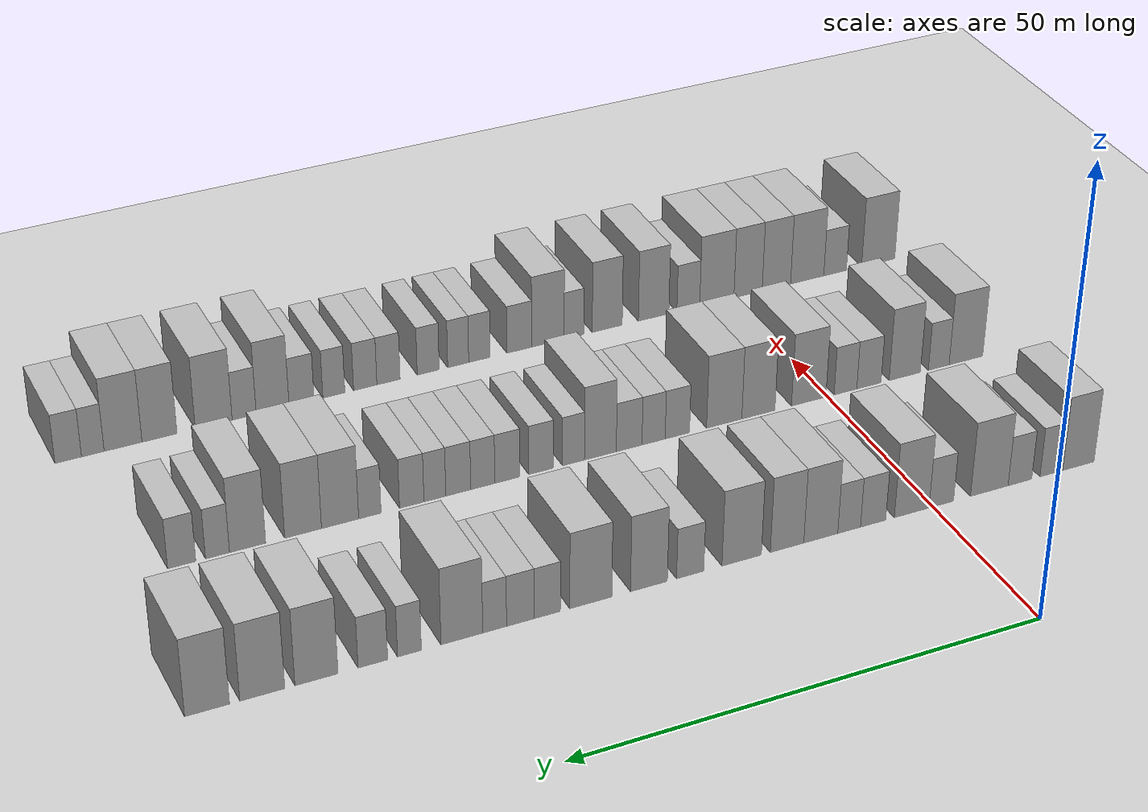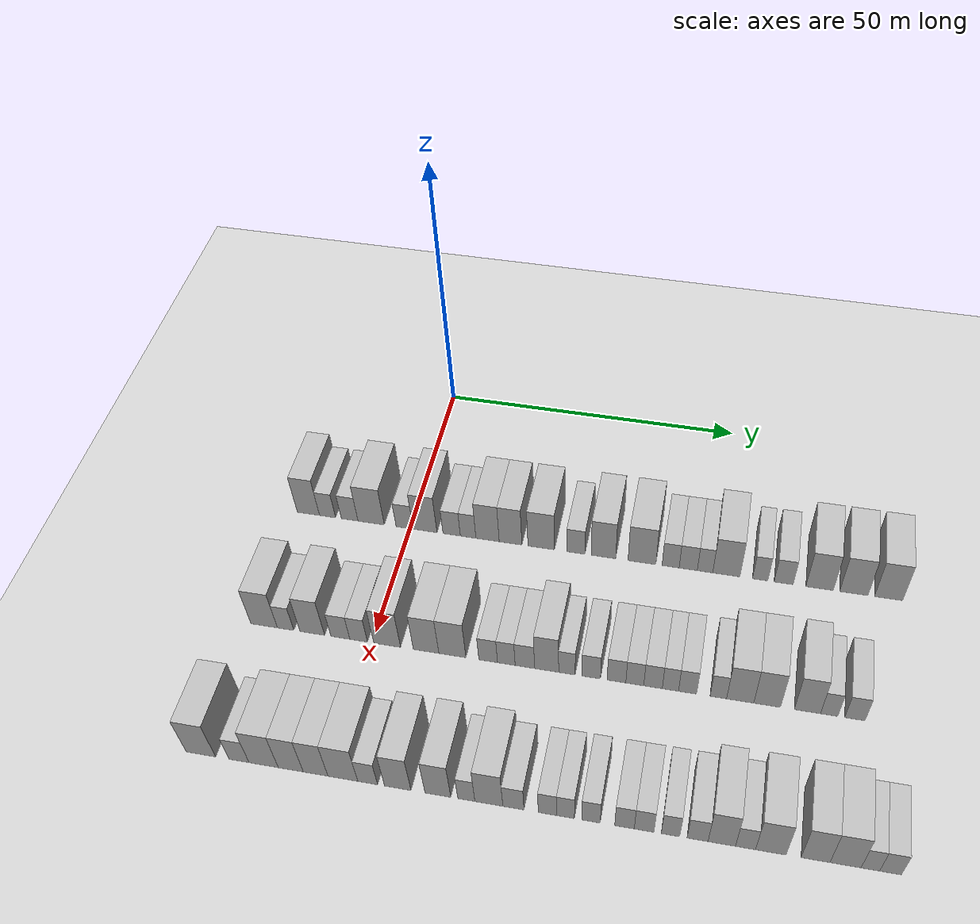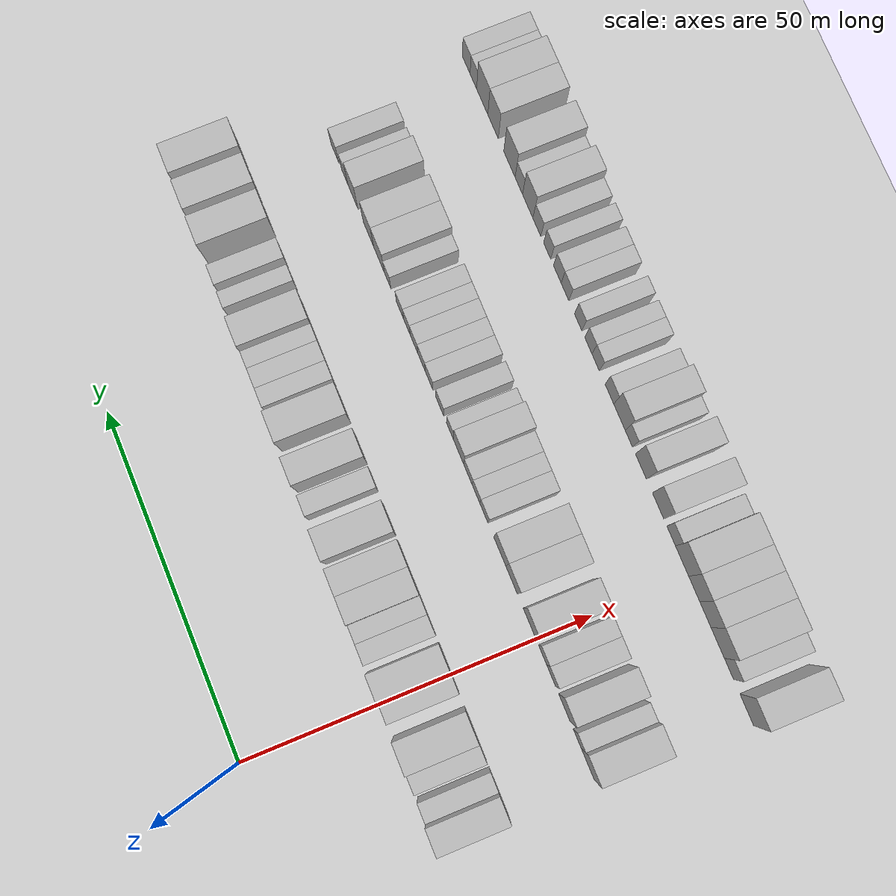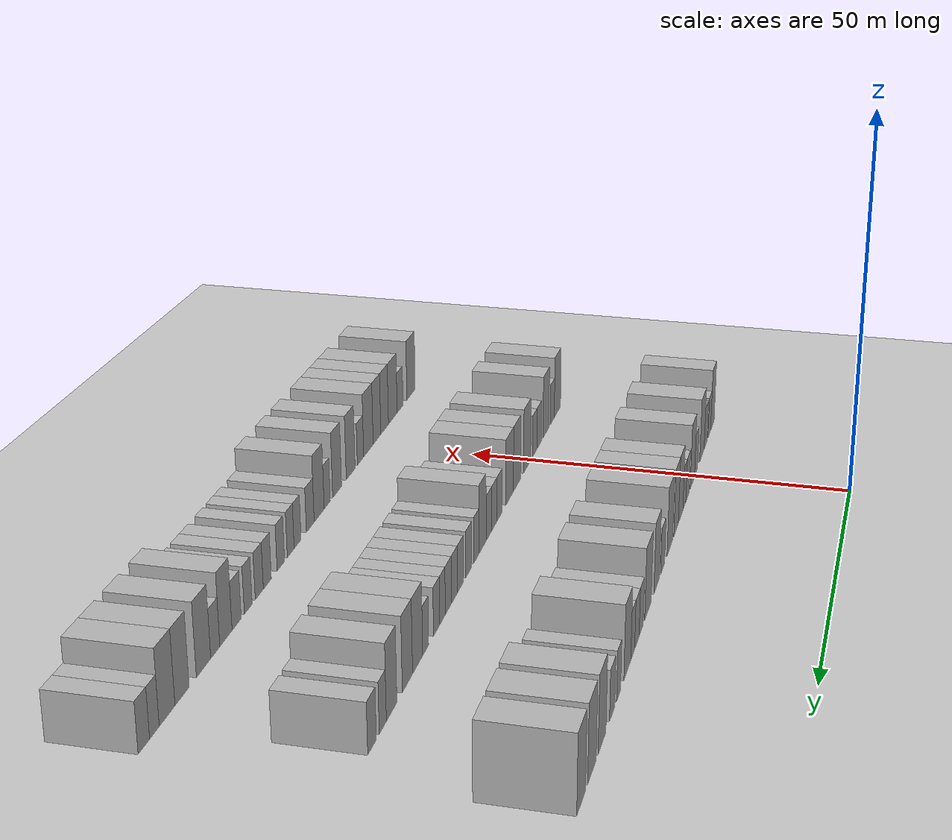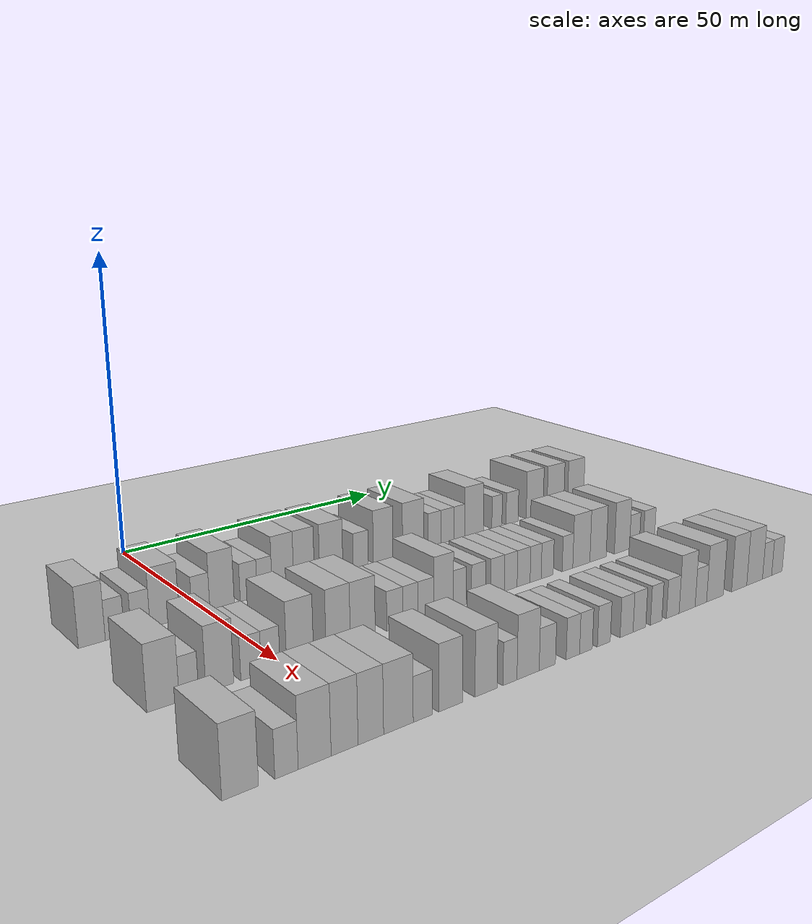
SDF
<sdf version="1.6">
 <world name="default">
  <include><name>ground_plane_1</name><uri>model://HANNAS_ground_plane</uri></include>
  <model name="building_84">
   <static>1</static>
   <pose>25.0000 -17.3759 0 0.000000 0.000000 0.000000</pose>
   <link name="link">
    <pose>0 0 4.50 0 0 0</pose>
    <collision name="collision"><geometry><box><size>10.0000 3.8138 9.0000</size></box></geometry></collision>
    <visual name="visual">
     <cast_shadows>0</cast_shadows>
     <geometry><box><size>10.0000 3.8138 9.0000</size></box></geometry>
     <material>
      <script>
       <uri>model://HANNAS_wall/materials/scripts</uri>
       <uri>model://HANNAS_wall/materials/textures</uri>
       <name>vrc/HANNAS_wall</name>
      </script>
     </material>
    </visual>
   </link>
  </model>
  <model name="building_85">
   <static>1</static>
   <pose>25.0000 -14.0923 0 0.000000 0.000000 0.000000</pose>
   <link name="link">
    <pose>0 0 3.00 0 0 0</pose>
    <collision name="collision"><geometry><box><size>10.0000 2.7533 6.0000</size></box></geometry></collision>
    <visual name="visual">
     <cast_shadows>0</cast_shadows>
     <geometry><box><size>10.0000 2.7533 6.0000</size></box></geometry>
     <material>
      <script>
       <uri>model://HANNAS_wall/materials/scripts</uri>
       <uri>model://HANNAS_wall/materials/textures</uri>
       <name>vrc/HANNAS_wall</name>
      </script>
     </material>
    </visual>
   </link>
  </model>
  <model name="building_86">
   <static>1</static>
   <pose>25.0000 -10.2972 0 0.000000 0.000000 0.000000</pose>
   <link name="link">
    <pose>0 0 3.00 0 0 0</pose>
    <collision name="collision"><geometry><box><size>10.0000 2.8370 6.0000</size></box></geometry></collision>
    <visual name="visual">
     <cast_shadows>0</cast_shadows>
     <geometry><box><size>10.0000 2.8370 6.0000</size></box></geometry>
     <material>
      <script>
       <uri>model://HANNAS_wall/materials/scripts</uri>
       <uri>model://HANNAS_wall/materials/textures</uri>
       <name>vrc/HANNAS_wall</name>
      </script>
     </material>
    </visual>
   </link>
  </model>
  <model name="building_87">
   <static>1</static>
   <pose>25.0000 -6.6408 0 0.000000 0.000000 0.000000</pose>
   <link name="link">
    <pose>0 0 4.50 0 0 0</pose>
    <collision name="collision"><geometry><box><size>10.0000 4.4758 9.0000</size></box></geometry></collision>
    <visual name="visual">
     <cast_shadows>0</cast_shadows>
     <geometry><box><size>10.0000 4.4758 9.0000</size></box></geometry>
     <material>
      <script>
       <uri>model://HANNAS_wall/materials/scripts</uri>
       <uri>model://HANNAS_wall/materials/textures</uri>
       <name>vrc/HANNAS_wall</name>
      </script>
     </material>
    </visual>
   </link>
  </model>
  <model name="building_88">
   <static>1</static>
   <pose>25.0000 -0.9645 0 0.000000 0.000000 0.000000</pose>
   <link name="link">
    <pose>0 0 3.00 0 0 0</pose>
    <collision name="collision"><geometry><box><size>10.0000 2.8769 6.0000</size></box></geometry></collision>
    <visual name="visual">
     <cast_shadows>0</cast_shadows>
     <geometry><box><size>10.0000 2.8769 6.0000</size></box></geometry>
     <material>
      <script>
       <uri>model://HANNAS_wall/materials/scripts</uri>
       <uri>model://HANNAS_wall/materials/textures</uri>
       <name>vrc/HANNAS_wall</name>
      </script>
     </material>
    </visual>
   </link>
  </model>
  <model name="building_89">
   <static>1</static>
   <pose>25.0000 2.4873 0 0.000000 0.000000 0.000000</pose>
   <link name="link">
    <pose>0 0 4.50 0 0 0</pose>
    <collision name="collision"><geometry><box><size>10.0000 4.0266 9.0000</size></box></geometry></collision>
    <visual name="visual">
     <cast_shadows>0</cast_shadows>
     <geometry><box><size>10.0000 4.0266 9.0000</size></box></geometry>
     <material>
      <script>
       <uri>model://HANNAS_wall/materials/scripts</uri>
       <uri>model://HANNAS_wall/materials/textures</uri>
       <name>vrc/HANNAS_wall</name>
      </script>
     </material>
    </visual>
   </link>
  </model>
  <model name="building_90">
   <static>1</static>
   <pose>25.0000 6.9519 0 0.000000 0.000000 0.000000</pose>
   <link name="link">
    <pose>0 0 3.00 0 0 0</pose>
    <collision name="collision"><geometry><box><size>10.0000 2.9027 6.0000</size></box></geometry></collision>
    <visual name="visual">
     <cast_shadows>0</cast_shadows>
     <geometry><box><size>10.0000 2.9027 6.0000</size></box></geometry>
     <material>
      <script>
       <uri>model://HANNAS_wall/materials/scripts</uri>
       <uri>model://HANNAS_wall/materials/textures</uri>
       <name>vrc/HANNAS_wall</name>
      </script>
     </material>
    </visual>
   </link>
  </model>
  <model name="building_91">
   <static>1</static>
   <pose>25.0000 9.7008 0 0.000000 0.000000 0.000000</pose>
   <link name="link">
    <pose>0 0 3.00 0 0 0</pose>
    <collision name="collision"><geometry><box><size>10.0000 2.5951 6.0000</size></box></geometry></collision>
    <visual name="visual">
     <cast_shadows>0</cast_shadows>
     <geometry><box><size>10.0000 2.5951 6.0000</size></box></geometry>
     <material>
      <script>
       <uri>model://HANNAS_wall/materials/scripts</uri>
       <uri>model://HANNAS_wall/materials/textures</uri>
       <name>vrc/HANNAS_wall</name>
      </script>
     </material>
    </visual>
   </link>
  </model>
  <model name="building_92">
   <static>1</static>
   <pose>25.0000 12.9299 0 0.000000 0.000000 0.000000</pose>
   <link name="link">
    <pose>0 0 4.50 0 0 0</pose>
    <collision name="collision"><geometry><box><size>10.0000 3.8630 9.0000</size></box></geometry></collision>
    <visual name="visual">
     <cast_shadows>0</cast_shadows>
     <geometry><box><size>10.0000 3.8630 9.0000</size></box></geometry>
     <material>
      <script>
       <uri>model://HANNAS_wall/materials/scripts</uri>
       <uri>model://HANNAS_wall/materials/textures</uri>
       <name>vrc/HANNAS_wall</name>
      </script>
     </material>
    </visual>
   </link>
  </model>
  <model name="building_93">
   <static>1</static>
   <pose>25.0000 16.7408 0 0.000000 0.000000 0.000000</pose>
   <link name="link">
    <pose>0 0 4.50 0 0 0</pose>
    <collision name="collision"><geometry><box><size>10.0000 3.7587 9.0000</size></box></geometry></collision>
    <visual name="visual">
     <cast_shadows>0</cast_shadows>
     <geometry><box><size>10.0000 3.7587 9.0000</size></box></geometry>
     <material>
      <script>
       <uri>model://HANNAS_wall/materials/scripts</uri>
       <uri>model://HANNAS_wall/materials/textures</uri>
       <name>vrc/HANNAS_wall</name>
      </script>
     </material>
    </visual>
   </link>
  </model>
  <model name="building_94">
   <static>1</static>
   <pose>25.0000 21.8074 0 0.000000 0.000000 0.000000</pose>
   <link name="link">
    <pose>0 0 4.50 0 0 0</pose>
    <collision name="collision"><geometry><box><size>10.0000 4.3744 9.0000</size></box></geometry></collision>
    <visual name="visual">
     <cast_shadows>0</cast_shadows>
     <geometry><box><size>10.0000 4.3744 9.0000</size></box></geometry>
     <material>
      <script>
       <uri>model://HANNAS_wall/materials/scripts</uri>
       <uri>model://HANNAS_wall/materials/textures</uri>
       <name>vrc/HANNAS_wall</name>
      </script>
     </material>
    </visual>
   </link>
  </model>
  <model name="building_95">
   <static>1</static>
   <pose>25.0000 27.4870 0 0.000000 0.000000 0.000000</pose>
   <link name="link">
    <pose>0 0 3.00 0 0 0</pose>
    <collision name="collision"><geometry><box><size>10.0000 2.9849 6.0000</size></box></geometry></collision>
    <visual name="visual">
     <cast_shadows>0</cast_shadows>
     <geometry><box><size>10.0000 2.9849 6.0000</size></box></geometry>
     <material>
      <script>
       <uri>model://HANNAS_wall/materials/scripts</uri>
       <uri>model://HANNAS_wall/materials/textures</uri>
       <name>vrc/HANNAS_wall</name>
      </script>
     </material>
    </visual>
   </link>
  </model>
  <model name="building_96">
   <static>1</static>
   <pose>25.0000 31.9734 0 0.000000 0.000000 0.000000</pose>
   <link name="link">
    <pose>0 0 4.50 0 0 0</pose>
    <collision name="collision"><geometry><box><size>10.0000 3.9878 9.0000</size></box></geometry></collision>
    <visual name="visual">
     <cast_shadows>0</cast_shadows>
     <geometry><box><size>10.0000 3.9878 9.0000</size></box></geometry>
     <material>
      <script>
       <uri>model://HANNAS_wall/materials/scripts</uri>
       <uri>model://HANNAS_wall/materials/textures</uri>
       <name>vrc/HANNAS_wall</name>
      </script>
     </material>
    </visual>
   </link>
  </model>
  <model name="building_97">
   <static>1</static>
   <pose>25.0000 38.2076 0 0.000000 0.000000 0.000000</pose>
   <link name="link">
    <pose>0 0 4.50 0 0 0</pose>
    <collision name="collision"><geometry><box><size>10.0000 4.4806 9.0000</size></box></geometry></collision>
    <visual name="visual">
     <cast_shadows>0</cast_shadows>
     <geometry><box><size>10.0000 4.4806 9.0000</size></box></geometry>
     <material>
      <script>
       <uri>model://HANNAS_wall/materials/scripts</uri>
       <uri>model://HANNAS_wall/materials/textures</uri>
       <name>vrc/HANNAS_wall</name>
      </script>
     </material>
    </visual>
   </link>
  </model>
  <model name="building_98">
   <static>1</static>
   <pose>25.0000 42.8174 0 0.000000 0.000000 0.000000</pose>
   <link name="link">
    <pose>0 0 3.00 0 0 0</pose>
    <collision name="collision"><geometry><box><size>10.0000 2.7390 6.0000</size></box></geometry></collision>
    <visual name="visual">
     <cast_shadows>0</cast_shadows>
     <geometry><box><size>10.0000 2.7390 6.0000</size></box></geometry>
     <material>
      <script>
       <uri>model://HANNAS_wall/materials/scripts</uri>
       <uri>model://HANNAS_wall/materials/textures</uri>
       <name>vrc/HANNAS_wall</name>
      </script>
     </material>
    </visual>
   </link>
  </model>
  <model name="building_99">
   <static>1</static>
   <pose>25.0000 45.6335 0 0.000000 0.000000 0.000000</pose>
   <link name="link">
    <pose>0 0 3.00 0 0 0</pose>
    <collision name="collision"><geometry><box><size>10.0000 2.8933 6.0000</size></box></geometry></collision>
    <visual name="visual">
     <cast_shadows>0</cast_shadows>
     <geometry><box><size>10.0000 2.8933 6.0000</size></box></geometry>
     <material>
      <script>
       <uri>model://HANNAS_wall/materials/scripts</uri>
       <uri>model://HANNAS_wall/materials/textures</uri>
       <name>vrc/HANNAS_wall</name>
      </script>
     </material>
    </visual>
   </link>
  </model>
  <model name="building_100">
   <static>1</static>
   <pose>25.0000 48.3159 0 0.000000 0.000000 0.000000</pose>
   <link name="link">
    <pose>0 0 3.00 0 0 0</pose>
    <collision name="collision"><geometry><box><size>10.0000 2.4715 6.0000</size></box></geometry></collision>
    <visual name="visual">
     <cast_shadows>0</cast_shadows>
     <geometry><box><size>10.0000 2.4715 6.0000</size></box></geometry>
     <material>
      <script>
       <uri>model://HANNAS_wall/materials/scripts</uri>
       <uri>model://HANNAS_wall/materials/textures</uri>
       <name>vrc/HANNAS_wall</name>
      </script>
     </material>
    </visual>
   </link>
  </model>
  <model name="building_101">
   <static>1</static>
   <pose>25.0000 51.7010 0 0.000000 0.000000 0.000000</pose>
   <link name="link">
    <pose>0 0 4.50 0 0 0</pose>
    <collision name="collision"><geometry><box><size>10.0000 4.2987 9.0000</size></box></geometry></collision>
    <visual name="visual">
     <cast_shadows>0</cast_shadows>
     <geometry><box><size>10.0000 4.2987 9.0000</size></box></geometry>
     <material>
      <script>
       <uri>model://HANNAS_wall/materials/scripts</uri>
       <uri>model://HANNAS_wall/materials/textures</uri>
       <name>vrc/HANNAS_wall</name>
      </script>
     </material>
    </visual>
   </link>
  </model>
  <model name="building_102">
   <static>1</static>
   <pose>25.0000 57.0596 0 0.000000 0.000000 0.000000</pose>
   <link name="link">
    <pose>0 0 3.00 0 0 0</pose>
    <collision name="collision"><geometry><box><size>10.0000 2.4184 6.0000</size></box></geometry></collision>
    <visual name="visual">
     <cast_shadows>0</cast_shadows>
     <geometry><box><size>10.0000 2.4184 6.0000</size></box></geometry>
     <material>
      <script>
       <uri>model://HANNAS_wall/materials/scripts</uri>
       <uri>model://HANNAS_wall/materials/textures</uri>
       <name>vrc/HANNAS_wall</name>
      </script>
     </material>
    </visual>
   </link>
  </model>
  <model name="building_103">
   <static>1</static>
   <pose>25.0000 60.7568 0 0.000000 0.000000 0.000000</pose>
   <link name="link">
    <pose>0 0 3.00 0 0 0</pose>
    <collision name="collision"><geometry><box><size>10.0000 2.9759 6.0000</size></box></geometry></collision>
    <visual name="visual">
     <cast_shadows>0</cast_shadows>
     <geometry><box><size>10.0000 2.9759 6.0000</size></box></geometry>
     <material>
      <script>
       <uri>model://HANNAS_wall/materials/scripts</uri>
       <uri>model://HANNAS_wall/materials/textures</uri>
       <name>vrc/HANNAS_wall</name>
      </script>
     </material>
    </visual>
   </link>
  </model>
  <model name="building_104">
   <static>1</static>
   <pose>25.0000 66.3782 0 0.000000 0.000000 0.000000</pose>
   <link name="link">
    <pose>0 0 4.50 0 0 0</pose>
    <collision name="collision"><geometry><box><size>10.0000 4.2670 9.0000</size></box></geometry></collision>
    <visual name="visual">
     <cast_shadows>0</cast_shadows>
     <geometry><box><size>10.0000 4.2670 9.0000</size></box></geometry>
     <material>
      <script>
       <uri>model://HANNAS_wall/materials/scripts</uri>
       <uri>model://HANNAS_wall/materials/textures</uri>
       <name>vrc/HANNAS_wall</name>
      </script>
     </material>
    </visual>
   </link>
  </model>
  <model name="building_105">
   <static>1</static>
   <pose>25.0000 71.7042 0 0.000000 0.000000 0.000000</pose>
   <link name="link">
    <pose>0 0 4.50 0 0 0</pose>
    <collision name="collision"><geometry><box><size>10.0000 4.3850 9.0000</size></box></geometry></collision>
    <visual name="visual">
     <cast_shadows>0</cast_shadows>
     <geometry><box><size>10.0000 4.3850 9.0000</size></box></geometry>
     <material>
      <script>
       <uri>model://HANNAS_wall/materials/scripts</uri>
       <uri>model://HANNAS_wall/materials/textures</uri>
       <name>vrc/HANNAS_wall</name>
      </script>
     </material>
    </visual>
   </link>
  </model>
  <model name="building_106">
   <static>1</static>
   <pose>25.0000 77.0617 0 0.000000 0.000000 0.000000</pose>
   <link name="link">
    <pose>0 0 4.50 0 0 0</pose>
    <collision name="collision"><geometry><box><size>10.0000 4.3301 9.0000</size></box></geometry></collision>
    <visual name="visual">
     <cast_shadows>0</cast_shadows>
     <geometry><box><size>10.0000 4.3301 9.0000</size></box></geometry>
     <material>
      <script>
       <uri>model://HANNAS_wall/materials/scripts</uri>
       <uri>model://HANNAS_wall/materials/textures</uri>
       <name>vrc/HANNAS_wall</name>
      </script>
     </material>
    </visual>
   </link>
  </model>
  <model name="building_276">
   <static>1</static>
   <pose>47.0000 -17.2260 0 0.000000 0.000000 0.000000</pose>
   <link name="link">
    <pose>0 0 4.50 0 0 0</pose>
    <collision name="collision"><geometry><box><size>10.0000 4.2676 9.0000</size></box></geometry></collision>
    <visual name="visual">
     <cast_shadows>0</cast_shadows>
     <geometry><box><size>10.0000 4.2676 9.0000</size></box></geometry>
     <material>
      <script>
       <uri>model://HANNAS_wall/materials/scripts</uri>
       <uri>model://HANNAS_wall/materials/textures</uri>
       <name>vrc/HANNAS_wall</name>
      </script>
     </material>
    </visual>
   </link>
  </model>
  <model name="building_277">
   <static>1</static>
   <pose>47.0000 -13.7852 0 0.000000 0.000000 0.000000</pose>
   <link name="link">
    <pose>0 0 3.00 0 0 0</pose>
    <collision name="collision"><geometry><box><size>10.0000 2.6142 6.0000</size></box></geometry></collision>
    <visual name="visual">
     <cast_shadows>0</cast_shadows>
     <geometry><box><size>10.0000 2.6142 6.0000</size></box></geometry>
     <material>
      <script>
       <uri>model://HANNAS_wall/materials/scripts</uri>
       <uri>model://HANNAS_wall/materials/textures</uri>
       <name>vrc/HANNAS_wall</name>
      </script>
     </material>
    </visual>
   </link>
  </model>
  <model name="building_278">
   <static>1</static>
   <pose>47.0000 -9.5276 0 0.000000 0.000000 0.000000</pose>
   <link name="link">
    <pose>0 0 4.50 0 0 0</pose>
    <collision name="collision"><geometry><box><size>10.0000 3.9010 9.0000</size></box></geometry></collision>
    <visual name="visual">
     <cast_shadows>0</cast_shadows>
     <geometry><box><size>10.0000 3.9010 9.0000</size></box></geometry>
     <material>
      <script>
       <uri>model://HANNAS_wall/materials/scripts</uri>
       <uri>model://HANNAS_wall/materials/textures</uri>
       <name>vrc/HANNAS_wall</name>
      </script>
     </material>
    </visual>
   </link>
  </model>
  <model name="building_279">
   <static>1</static>
   <pose>47.0000 -5.0783 0 0.000000 0.000000 0.000000</pose>
   <link name="link">
    <pose>0 0 3.00 0 0 0</pose>
    <collision name="collision"><geometry><box><size>10.0000 2.9975 6.0000</size></box></geometry></collision>
    <visual name="visual">
     <cast_shadows>0</cast_shadows>
     <geometry><box><size>10.0000 2.9975 6.0000</size></box></geometry>
     <material>
      <script>
       <uri>model://HANNAS_wall/materials/scripts</uri>
       <uri>model://HANNAS_wall/materials/textures</uri>
       <name>vrc/HANNAS_wall</name>
      </script>
     </material>
    </visual>
   </link>
  </model>
  <model name="building_280">
   <static>1</static>
   <pose>47.0000 -2.1863 0 0.000000 0.000000 0.000000</pose>
   <link name="link">
    <pose>0 0 3.00 0 0 0</pose>
    <collision name="collision"><geometry><box><size>10.0000 2.7865 6.0000</size></box></geometry></collision>
    <visual name="visual">
     <cast_shadows>0</cast_shadows>
     <geometry><box><size>10.0000 2.7865 6.0000</size></box></geometry>
     <material>
      <script>
       <uri>model://HANNAS_wall/materials/scripts</uri>
       <uri>model://HANNAS_wall/materials/textures</uri>
       <name>vrc/HANNAS_wall</name>
      </script>
     </material>
    </visual>
   </link>
  </model>
  <model name="building_281">
   <static>1</static>
   <pose>47.0000 2.2988 0 0.000000 0.000000 0.000000</pose>
   <link name="link">
    <pose>0 0 4.50 0 0 0</pose>
    <collision name="collision"><geometry><box><size>10.0000 4.1838 9.0000</size></box></geometry></collision>
    <visual name="visual">
     <cast_shadows>0</cast_shadows>
     <geometry><box><size>10.0000 4.1838 9.0000</size></box></geometry>
     <material>
      <script>
       <uri>model://HANNAS_wall/materials/scripts</uri>
       <uri>model://HANNAS_wall/materials/textures</uri>
       <name>vrc/HANNAS_wall</name>
      </script>
     </material>
    </visual>
   </link>
  </model>
  <model name="building_282">
   <static>1</static>
   <pose>47.0000 8.3733 0 0.000000 0.000000 0.000000</pose>
   <link name="link">
    <pose>0 0 4.50 0 0 0</pose>
    <collision name="collision"><geometry><box><size>10.0000 3.9652 9.0000</size></box></geometry></collision>
    <visual name="visual">
     <cast_shadows>0</cast_shadows>
     <geometry><box><size>10.0000 3.9652 9.0000</size></box></geometry>
     <material>
      <script>
       <uri>model://HANNAS_wall/materials/scripts</uri>
       <uri>model://HANNAS_wall/materials/textures</uri>
       <name>vrc/HANNAS_wall</name>
      </script>
     </material>
    </visual>
   </link>
  </model>
  <model name="building_283">
   <static>1</static>
   <pose>47.0000 12.4504 0 0.000000 0.000000 0.000000</pose>
   <link name="link">
    <pose>0 0 4.50 0 0 0</pose>
    <collision name="collision"><geometry><box><size>10.0000 4.1890 9.0000</size></box></geometry></collision>
    <visual name="visual">
     <cast_shadows>0</cast_shadows>
     <geometry><box><size>10.0000 4.1890 9.0000</size></box></geometry>
     <material>
      <script>
       <uri>model://HANNAS_wall/materials/scripts</uri>
       <uri>model://HANNAS_wall/materials/textures</uri>
       <name>vrc/HANNAS_wall</name>
      </script>
     </material>
    </visual>
   </link>
  </model>
  <model name="building_284">
   <static>1</static>
   <pose>47.0000 17.9742 0 0.000000 0.000000 0.000000</pose>
   <link name="link">
    <pose>0 0 3.00 0 0 0</pose>
    <collision name="collision"><geometry><box><size>10.0000 2.8586 6.0000</size></box></geometry></collision>
    <visual name="visual">
     <cast_shadows>0</cast_shadows>
     <geometry><box><size>10.0000 2.8586 6.0000</size></box></geometry>
     <material>
      <script>
       <uri>model://HANNAS_wall/materials/scripts</uri>
       <uri>model://HANNAS_wall/materials/textures</uri>
       <name>vrc/HANNAS_wall</name>
      </script>
     </material>
    </visual>
   </link>
  </model>
  <model name="building_285">
   <static>1</static>
   <pose>47.0000 20.7524 0 0.000000 0.000000 0.000000</pose>
   <link name="link">
    <pose>0 0 3.00 0 0 0</pose>
    <collision name="collision"><geometry><box><size>10.0000 2.6980 6.0000</size></box></geometry></collision>
    <visual name="visual">
     <cast_shadows>0</cast_shadows>
     <geometry><box><size>10.0000 2.6980 6.0000</size></box></geometry>
     <material>
      <script>
       <uri>model://HANNAS_wall/materials/scripts</uri>
       <uri>model://HANNAS_wall/materials/textures</uri>
       <name>vrc/HANNAS_wall</name>
      </script>
     </material>
    </visual>
   </link>
  </model>
  <model name="building_286">
   <static>1</static>
   <pose>47.0000 23.5860 0 0.000000 0.000000 0.000000</pose>
   <link name="link">
    <pose>0 0 3.00 0 0 0</pose>
    <collision name="collision"><geometry><box><size>10.0000 2.9692 6.0000</size></box></geometry></collision>
    <visual name="visual">
     <cast_shadows>0</cast_shadows>
     <geometry><box><size>10.0000 2.9692 6.0000</size></box></geometry>
     <material>
      <script>
       <uri>model://HANNAS_wall/materials/scripts</uri>
       <uri>model://HANNAS_wall/materials/textures</uri>
       <name>vrc/HANNAS_wall</name>
      </script>
     </material>
    </visual>
   </link>
  </model>
  <model name="building_287">
   <static>1</static>
   <pose>47.0000 26.8991 0 0.000000 0.000000 0.000000</pose>
   <link name="link">
    <pose>0 0 4.50 0 0 0</pose>
    <collision name="collision"><geometry><box><size>10.0000 3.6569 9.0000</size></box></geometry></collision>
    <visual name="visual">
     <cast_shadows>0</cast_shadows>
     <geometry><box><size>10.0000 3.6569 9.0000</size></box></geometry>
     <material>
      <script>
       <uri>model://HANNAS_wall/materials/scripts</uri>
       <uri>model://HANNAS_wall/materials/textures</uri>
       <name>vrc/HANNAS_wall</name>
      </script>
     </material>
    </visual>
   </link>
  </model>
  <model name="building_288">
   <static>1</static>
   <pose>47.0000 29.9721 0 0.000000 0.000000 0.000000</pose>
   <link name="link">
    <pose>0 0 3.00 0 0 0</pose>
    <collision name="collision"><geometry><box><size>10.0000 2.4892 6.0000</size></box></geometry></collision>
    <visual name="visual">
     <cast_shadows>0</cast_shadows>
     <geometry><box><size>10.0000 2.4892 6.0000</size></box></geometry>
     <material>
      <script>
       <uri>model://HANNAS_wall/materials/scripts</uri>
       <uri>model://HANNAS_wall/materials/textures</uri>
       <name>vrc/HANNAS_wall</name>
      </script>
     </material>
    </visual>
   </link>
  </model>
  <model name="building_289">
   <static>1</static>
   <pose>47.0000 33.6264 0 0.000000 0.000000 0.000000</pose>
   <link name="link">
    <pose>0 0 3.00 0 0 0</pose>
    <collision name="collision"><geometry><box><size>10.0000 2.8194 6.0000</size></box></geometry></collision>
    <visual name="visual">
     <cast_shadows>0</cast_shadows>
     <geometry><box><size>10.0000 2.8194 6.0000</size></box></geometry>
     <material>
      <script>
       <uri>model://HANNAS_wall/materials/scripts</uri>
       <uri>model://HANNAS_wall/materials/textures</uri>
       <name>vrc/HANNAS_wall</name>
      </script>
     </material>
    </visual>
   </link>
  </model>
  <model name="building_290">
   <static>1</static>
   <pose>47.0000 37.4387 0 0.000000 0.000000 0.000000</pose>
   <link name="link">
    <pose>0 0 3.00 0 0 0</pose>
    <collision name="collision"><geometry><box><size>10.0000 2.8050 6.0000</size></box></geometry></collision>
    <visual name="visual">
     <cast_shadows>0</cast_shadows>
     <geometry><box><size>10.0000 2.8050 6.0000</size></box></geometry>
     <material>
      <script>
       <uri>model://HANNAS_wall/materials/scripts</uri>
       <uri>model://HANNAS_wall/materials/textures</uri>
       <name>vrc/HANNAS_wall</name>
      </script>
     </material>
    </visual>
   </link>
  </model>
  <model name="building_291">
   <static>1</static>
   <pose>47.0000 40.1781 0 0.000000 0.000000 0.000000</pose>
   <link name="link">
    <pose>0 0 3.00 0 0 0</pose>
    <collision name="collision"><geometry><box><size>10.0000 2.6738 6.0000</size></box></geometry></collision>
    <visual name="visual">
     <cast_shadows>0</cast_shadows>
     <geometry><box><size>10.0000 2.6738 6.0000</size></box></geometry>
     <material>
      <script>
       <uri>model://HANNAS_wall/materials/scripts</uri>
       <uri>model://HANNAS_wall/materials/textures</uri>
       <name>vrc/HANNAS_wall</name>
      </script>
     </material>
    </visual>
   </link>
  </model>
  <model name="building_292">
   <static>1</static>
   <pose>47.0000 42.8926 0 0.000000 0.000000 0.000000</pose>
   <link name="link">
    <pose>0 0 3.00 0 0 0</pose>
    <collision name="collision"><geometry><box><size>10.0000 2.7552 6.0000</size></box></geometry></collision>
    <visual name="visual">
     <cast_shadows>0</cast_shadows>
     <geometry><box><size>10.0000 2.7552 6.0000</size></box></geometry>
     <material>
      <script>
       <uri>model://HANNAS_wall/materials/scripts</uri>
       <uri>model://HANNAS_wall/materials/textures</uri>
       <name>vrc/HANNAS_wall</name>
      </script>
     </material>
    </visual>
   </link>
  </model>
  <model name="building_293">
   <static>1</static>
   <pose>47.0000 45.4708 0 0.000000 0.000000 0.000000</pose>
   <link name="link">
    <pose>0 0 3.00 0 0 0</pose>
    <collision name="collision"><geometry><box><size>10.0000 2.4011 6.0000</size></box></geometry></collision>
    <visual name="visual">
     <cast_shadows>0</cast_shadows>
     <geometry><box><size>10.0000 2.4011 6.0000</size></box></geometry>
     <material>
      <script>
       <uri>model://HANNAS_wall/materials/scripts</uri>
       <uri>model://HANNAS_wall/materials/textures</uri>
       <name>vrc/HANNAS_wall</name>
      </script>
     </material>
    </visual>
   </link>
  </model>
  <model name="building_294">
   <static>1</static>
   <pose>47.0000 48.0061 0 0.000000 0.000000 0.000000</pose>
   <link name="link">
    <pose>0 0 3.00 0 0 0</pose>
    <collision name="collision"><geometry><box><size>10.0000 2.6696 6.0000</size></box></geometry></collision>
    <visual name="visual">
     <cast_shadows>0</cast_shadows>
     <geometry><box><size>10.0000 2.6696 6.0000</size></box></geometry>
     <material>
      <script>
       <uri>model://HANNAS_wall/materials/scripts</uri>
       <uri>model://HANNAS_wall/materials/textures</uri>
       <name>vrc/HANNAS_wall</name>
      </script>
     </material>
    </visual>
   </link>
  </model>
  <model name="building_295">
   <static>1</static>
   <pose>47.0000 52.5506 0 0.000000 0.000000 0.000000</pose>
   <link name="link">
    <pose>0 0 3.00 0 0 0</pose>
    <collision name="collision"><geometry><box><size>10.0000 2.4193 6.0000</size></box></geometry></collision>
    <visual name="visual">
     <cast_shadows>0</cast_shadows>
     <geometry><box><size>10.0000 2.4193 6.0000</size></box></geometry>
     <material>
      <script>
       <uri>model://HANNAS_wall/materials/scripts</uri>
       <uri>model://HANNAS_wall/materials/textures</uri>
       <name>vrc/HANNAS_wall</name>
      </script>
     </material>
    </visual>
   </link>
  </model>
  <model name="building_296">
   <static>1</static>
   <pose>47.0000 55.7497 0 0.000000 0.000000 0.000000</pose>
   <link name="link">
    <pose>0 0 4.50 0 0 0</pose>
    <collision name="collision"><geometry><box><size>10.0000 3.9790 9.0000</size></box></geometry></collision>
    <visual name="visual">
     <cast_shadows>0</cast_shadows>
     <geometry><box><size>10.0000 3.9790 9.0000</size></box></geometry>
     <material>
      <script>
       <uri>model://HANNAS_wall/materials/scripts</uri>
       <uri>model://HANNAS_wall/materials/textures</uri>
       <name>vrc/HANNAS_wall</name>
      </script>
     </material>
    </visual>
   </link>
  </model>
  <model name="building_297">
   <static>1</static>
   <pose>47.0000 59.6913 0 0.000000 0.000000 0.000000</pose>
   <link name="link">
    <pose>0 0 4.50 0 0 0</pose>
    <collision name="collision"><geometry><box><size>10.0000 3.9042 9.0000</size></box></geometry></collision>
    <visual name="visual">
     <cast_shadows>0</cast_shadows>
     <geometry><box><size>10.0000 3.9042 9.0000</size></box></geometry>
     <material>
      <script>
       <uri>model://HANNAS_wall/materials/scripts</uri>
       <uri>model://HANNAS_wall/materials/textures</uri>
       <name>vrc/HANNAS_wall</name>
      </script>
     </material>
    </visual>
   </link>
  </model>
  <model name="building_298">
   <static>1</static>
   <pose>47.0000 65.5349 0 0.000000 0.000000 0.000000</pose>
   <link name="link">
    <pose>0 0 4.50 0 0 0</pose>
    <collision name="collision"><geometry><box><size>10.0000 3.7829 9.0000</size></box></geometry></collision>
    <visual name="visual">
     <cast_shadows>0</cast_shadows>
     <geometry><box><size>10.0000 3.7829 9.0000</size></box></geometry>
     <material>
      <script>
       <uri>model://HANNAS_wall/materials/scripts</uri>
       <uri>model://HANNAS_wall/materials/textures</uri>
       <name>vrc/HANNAS_wall</name>
      </script>
     </material>
    </visual>
   </link>
  </model>
  <model name="building_299">
   <static>1</static>
   <pose>47.0000 68.6725 0 0.000000 0.000000 0.000000</pose>
   <link name="link">
    <pose>0 0 3.00 0 0 0</pose>
    <collision name="collision"><geometry><box><size>10.0000 2.4925 6.0000</size></box></geometry></collision>
    <visual name="visual">
     <cast_shadows>0</cast_shadows>
     <geometry><box><size>10.0000 2.4925 6.0000</size></box></geometry>
     <material>
      <script>
       <uri>model://HANNAS_wall/materials/scripts</uri>
       <uri>model://HANNAS_wall/materials/textures</uri>
       <name>vrc/HANNAS_wall</name>
      </script>
     </material>
    </visual>
   </link>
  </model>
  <model name="building_300">
   <static>1</static>
   <pose>47.0000 72.3724 0 0.000000 0.000000 0.000000</pose>
   <link name="link">
    <pose>0 0 3.00 0 0 0</pose>
    <collision name="collision"><geometry><box><size>10.0000 2.9072 6.0000</size></box></geometry></collision>
    <visual name="visual">
     <cast_shadows>0</cast_shadows>
     <geometry><box><size>10.0000 2.9072 6.0000</size></box></geometry>
     <material>
      <script>
       <uri>model://HANNAS_wall/materials/scripts</uri>
       <uri>model://HANNAS_wall/materials/textures</uri>
       <name>vrc/HANNAS_wall</name>
      </script>
     </material>
    </visual>
   </link>
  </model>
  <model name="building_464">
   <static>1</static>
   <pose>69.0000 -18.8161 0 0.000000 0.000000 0.000000</pose>
   <link name="link">
    <pose>0 0 4.50 0 0 0</pose>
    <collision name="collision"><geometry><box><size>10.0000 4.3909 9.0000</size></box></geometry></collision>
    <visual name="visual">
     <cast_shadows>0</cast_shadows>
     <geometry><box><size>10.0000 4.3909 9.0000</size></box></geometry>
     <material>
      <script>
       <uri>model://HANNAS_wall/materials/scripts</uri>
       <uri>model://HANNAS_wall/materials/textures</uri>
       <name>vrc/HANNAS_wall</name>
      </script>
     </material>
    </visual>
   </link>
  </model>
  <model name="building_465">
   <static>1</static>
   <pose>69.0000 -13.1410 0 0.000000 0.000000 0.000000</pose>
   <link name="link">
    <pose>0 0 3.00 0 0 0</pose>
    <collision name="collision"><geometry><box><size>10.0000 2.9592 6.0000</size></box></geometry></collision>
    <visual name="visual">
     <cast_shadows>0</cast_shadows>
     <geometry><box><size>10.0000 2.9592 6.0000</size></box></geometry>
     <material>
      <script>
       <uri>model://HANNAS_wall/materials/scripts</uri>
       <uri>model://HANNAS_wall/materials/textures</uri>
       <name>vrc/HANNAS_wall</name>
      </script>
     </material>
    </visual>
   </link>
  </model>
  <model name="building_466">
   <static>1</static>
   <pose>69.0000 -9.5042 0 0.000000 0.000000 0.000000</pose>
   <link name="link">
    <pose>0 0 4.50 0 0 0</pose>
    <collision name="collision"><geometry><box><size>10.0000 4.3145 9.0000</size></box></geometry></collision>
    <visual name="visual">
     <cast_shadows>0</cast_shadows>
     <geometry><box><size>10.0000 4.3145 9.0000</size></box></geometry>
     <material>
      <script>
       <uri>model://HANNAS_wall/materials/scripts</uri>
       <uri>model://HANNAS_wall/materials/textures</uri>
       <name>vrc/HANNAS_wall</name>
      </script>
     </material>
    </visual>
   </link>
  </model>
  <model name="building_467">
   <static>1</static>
   <pose>69.0000 -5.5142 0 0.000000 0.000000 0.000000</pose>
   <link name="link">
    <pose>0 0 4.50 0 0 0</pose>
    <collision name="collision"><geometry><box><size>10.0000 3.6656 9.0000</size></box></geometry></collision>
    <visual name="visual">
     <cast_shadows>0</cast_shadows>
     <geometry><box><size>10.0000 3.6656 9.0000</size></box></geometry>
     <material>
      <script>
       <uri>model://HANNAS_wall/materials/scripts</uri>
       <uri>model://HANNAS_wall/materials/textures</uri>
       <name>vrc/HANNAS_wall</name>
      </script>
     </material>
    </visual>
   </link>
  </model>
  <model name="building_468">
   <static>1</static>
   <pose>69.0000 -1.8766 0 0.000000 0.000000 0.000000</pose>
   <link name="link">
    <pose>0 0 4.50 0 0 0</pose>
    <collision name="collision"><geometry><box><size>10.0000 3.6096 9.0000</size></box></geometry></collision>
    <visual name="visual">
     <cast_shadows>0</cast_shadows>
     <geometry><box><size>10.0000 3.6096 9.0000</size></box></geometry>
     <material>
      <script>
       <uri>model://HANNAS_wall/materials/scripts</uri>
       <uri>model://HANNAS_wall/materials/textures</uri>
       <name>vrc/HANNAS_wall</name>
      </script>
     </material>
    </visual>
   </link>
  </model>
  <model name="building_469">
   <static>1</static>
   <pose>69.0000 2.0972 0 0.000000 0.000000 0.000000</pose>
   <link name="link">
    <pose>0 0 4.50 0 0 0</pose>
    <collision name="collision"><geometry><box><size>10.0000 4.3378 9.0000</size></box></geometry></collision>
    <visual name="visual">
     <cast_shadows>0</cast_shadows>
     <geometry><box><size>10.0000 4.3378 9.0000</size></box></geometry>
     <material>
      <script>
       <uri>model://HANNAS_wall/materials/scripts</uri>
       <uri>model://HANNAS_wall/materials/textures</uri>
       <name>vrc/HANNAS_wall</name>
      </script>
     </material>
    </visual>
   </link>
  </model>
  <model name="building_470">
   <static>1</static>
   <pose>69.0000 5.6985 0 0.000000 0.000000 0.000000</pose>
   <link name="link">
    <pose>0 0 3.00 0 0 0</pose>
    <collision name="collision"><geometry><box><size>10.0000 2.8648 6.0000</size></box></geometry></collision>
    <visual name="visual">
     <cast_shadows>0</cast_shadows>
     <geometry><box><size>10.0000 2.8648 6.0000</size></box></geometry>
     <material>
      <script>
       <uri>model://HANNAS_wall/materials/scripts</uri>
       <uri>model://HANNAS_wall/materials/textures</uri>
       <name>vrc/HANNAS_wall</name>
      </script>
     </material>
    </visual>
   </link>
  </model>
  <model name="building_471">
   <static>1</static>
   <pose>69.0000 10.0300 0 0.000000 0.000000 0.000000</pose>
   <link name="link">
    <pose>0 0 4.50 0 0 0</pose>
    <collision name="collision"><geometry><box><size>10.0000 3.7983 9.0000</size></box></geometry></collision>
    <visual name="visual">
     <cast_shadows>0</cast_shadows>
     <geometry><box><size>10.0000 3.7983 9.0000</size></box></geometry>
     <material>
      <script>
       <uri>model://HANNAS_wall/materials/scripts</uri>
       <uri>model://HANNAS_wall/materials/textures</uri>
       <name>vrc/HANNAS_wall</name>
      </script>
     </material>
    </visual>
   </link>
  </model>
  <model name="building_472">
   <static>1</static>
   <pose>69.0000 15.7707 0 0.000000 0.000000 0.000000</pose>
   <link name="link">
    <pose>0 0 4.50 0 0 0</pose>
    <collision name="collision"><geometry><box><size>10.0000 3.6831 9.0000</size></box></geometry></collision>
    <visual name="visual">
     <cast_shadows>0</cast_shadows>
     <geometry><box><size>10.0000 3.6831 9.0000</size></box></geometry>
     <material>
      <script>
       <uri>model://HANNAS_wall/materials/scripts</uri>
       <uri>model://HANNAS_wall/materials/textures</uri>
       <name>vrc/HANNAS_wall</name>
      </script>
     </material>
    </visual>
   </link>
  </model>
  <model name="building_473">
   <static>1</static>
   <pose>69.0000 19.8213 0 0.000000 0.000000 0.000000</pose>
   <link name="link">
    <pose>0 0 3.00 0 0 0</pose>
    <collision name="collision"><geometry><box><size>10.0000 2.4180 6.0000</size></box></geometry></collision>
    <visual name="visual">
     <cast_shadows>0</cast_shadows>
     <geometry><box><size>10.0000 2.4180 6.0000</size></box></geometry>
     <material>
      <script>
       <uri>model://HANNAS_wall/materials/scripts</uri>
       <uri>model://HANNAS_wall/materials/textures</uri>
       <name>vrc/HANNAS_wall</name>
      </script>
     </material>
    </visual>
   </link>
  </model>
  <model name="building_474">
   <static>1</static>
   <pose>69.0000 22.9998 0 0.000000 0.000000 0.000000</pose>
   <link name="link">
    <pose>0 0 4.50 0 0 0</pose>
    <collision name="collision"><geometry><box><size>10.0000 3.9391 9.0000</size></box></geometry></collision>
    <visual name="visual">
     <cast_shadows>0</cast_shadows>
     <geometry><box><size>10.0000 3.9391 9.0000</size></box></geometry>
     <material>
      <script>
       <uri>model://HANNAS_wall/materials/scripts</uri>
       <uri>model://HANNAS_wall/materials/textures</uri>
       <name>vrc/HANNAS_wall</name>
      </script>
     </material>
    </visual>
   </link>
  </model>
  <model name="building_475">
   <static>1</static>
   <pose>69.0000 26.4534 0 0.000000 0.000000 0.000000</pose>
   <link name="link">
    <pose>0 0 3.00 0 0 0</pose>
    <collision name="collision"><geometry><box><size>10.0000 2.9681 6.0000</size></box></geometry></collision>
    <visual name="visual">
     <cast_shadows>0</cast_shadows>
     <geometry><box><size>10.0000 2.9681 6.0000</size></box></geometry>
     <material>
      <script>
       <uri>model://HANNAS_wall/materials/scripts</uri>
       <uri>model://HANNAS_wall/materials/textures</uri>
       <name>vrc/HANNAS_wall</name>
      </script>
     </material>
    </visual>
   </link>
  </model>
  <model name="building_476">
   <static>1</static>
   <pose>69.0000 31.2133 0 0.000000 0.000000 0.000000</pose>
   <link name="link">
    <pose>0 0 3.00 0 0 0</pose>
    <collision name="collision"><geometry><box><size>10.0000 2.5516 6.0000</size></box></geometry></collision>
    <visual name="visual">
     <cast_shadows>0</cast_shadows>
     <geometry><box><size>10.0000 2.5516 6.0000</size></box></geometry>
     <material>
      <script>
       <uri>model://HANNAS_wall/materials/scripts</uri>
       <uri>model://HANNAS_wall/materials/textures</uri>
       <name>vrc/HANNAS_wall</name>
      </script>
     </material>
    </visual>
   </link>
  </model>
  <model name="building_477">
   <static>1</static>
   <pose>69.0000 33.7286 0 0.000000 0.000000 0.000000</pose>
   <link name="link">
    <pose>0 0 3.00 0 0 0</pose>
    <collision name="collision"><geometry><box><size>10.0000 2.4790 6.0000</size></box></geometry></collision>
    <visual name="visual">
     <cast_shadows>0</cast_shadows>
     <geometry><box><size>10.0000 2.4790 6.0000</size></box></geometry>
     <material>
      <script>
       <uri>model://HANNAS_wall/materials/scripts</uri>
       <uri>model://HANNAS_wall/materials/textures</uri>
       <name>vrc/HANNAS_wall</name>
      </script>
     </material>
    </visual>
   </link>
  </model>
  <model name="building_478">
   <static>1</static>
   <pose>69.0000 37.2564 0 0.000000 0.000000 0.000000</pose>
   <link name="link">
    <pose>0 0 3.00 0 0 0</pose>
    <collision name="collision"><geometry><box><size>10.0000 2.5767 6.0000</size></box></geometry></collision>
    <visual name="visual">
     <cast_shadows>0</cast_shadows>
     <geometry><box><size>10.0000 2.5767 6.0000</size></box></geometry>
     <material>
      <script>
       <uri>model://HANNAS_wall/materials/scripts</uri>
       <uri>model://HANNAS_wall/materials/textures</uri>
       <name>vrc/HANNAS_wall</name>
      </script>
     </material>
    </visual>
   </link>
  </model>
  <model name="building_479">
   <static>1</static>
   <pose>69.0000 41.8900 0 0.000000 0.000000 0.000000</pose>
   <link name="link">
    <pose>0 0 3.00 0 0 0</pose>
    <collision name="collision"><geometry><box><size>10.0000 2.6904 6.0000</size></box></geometry></collision>
    <visual name="visual">
     <cast_shadows>0</cast_shadows>
     <geometry><box><size>10.0000 2.6904 6.0000</size></box></geometry>
     <material>
      <script>
       <uri>model://HANNAS_wall/materials/scripts</uri>
       <uri>model://HANNAS_wall/materials/textures</uri>
       <name>vrc/HANNAS_wall</name>
      </script>
     </material>
    </visual>
   </link>
  </model>
  <model name="building_480">
   <static>1</static>
   <pose>69.0000 44.5796 0 0.000000 0.000000 0.000000</pose>
   <link name="link">
    <pose>0 0 3.00 0 0 0</pose>
    <collision name="collision"><geometry><box><size>10.0000 2.6886 6.0000</size></box></geometry></collision>
    <visual name="visual">
     <cast_shadows>0</cast_shadows>
     <geometry><box><size>10.0000 2.6886 6.0000</size></box></geometry>
     <material>
      <script>
       <uri>model://HANNAS_wall/materials/scripts</uri>
       <uri>model://HANNAS_wall/materials/textures</uri>
       <name>vrc/HANNAS_wall</name>
      </script>
     </material>
    </visual>
   </link>
  </model>
  <model name="building_481">
   <static>1</static>
   <pose>69.0000 48.1801 0 0.000000 0.000000 0.000000</pose>
   <link name="link">
    <pose>0 0 3.00 0 0 0</pose>
    <collision name="collision"><geometry><box><size>10.0000 2.5124 6.0000</size></box></geometry></collision>
    <visual name="visual">
     <cast_shadows>0</cast_shadows>
     <geometry><box><size>10.0000 2.5124 6.0000</size></box></geometry>
     <material>
      <script>
       <uri>model://HANNAS_wall/materials/scripts</uri>
       <uri>model://HANNAS_wall/materials/textures</uri>
       <name>vrc/HANNAS_wall</name>
      </script>
     </material>
    </visual>
   </link>
  </model>
  <model name="building_482">
   <static>1</static>
   <pose>69.0000 51.8551 0 0.000000 0.000000 0.000000</pose>
   <link name="link">
    <pose>0 0 3.00 0 0 0</pose>
    <collision name="collision"><geometry><box><size>10.0000 2.8376 6.0000</size></box></geometry></collision>
    <visual name="visual">
     <cast_shadows>0</cast_shadows>
     <geometry><box><size>10.0000 2.8376 6.0000</size></box></geometry>
     <material>
      <script>
       <uri>model://HANNAS_wall/materials/scripts</uri>
       <uri>model://HANNAS_wall/materials/textures</uri>
       <name>vrc/HANNAS_wall</name>
      </script>
     </material>
    </visual>
   </link>
  </model>
  <model name="building_483">
   <static>1</static>
   <pose>69.0000 55.1248 0 0.000000 0.000000 0.000000</pose>
   <link name="link">
    <pose>0 0 4.50 0 0 0</pose>
    <collision name="collision"><geometry><box><size>10.0000 3.7018 9.0000</size></box></geometry></collision>
    <visual name="visual">
     <cast_shadows>0</cast_shadows>
     <geometry><box><size>10.0000 3.7018 9.0000</size></box></geometry>
     <material>
      <script>
       <uri>model://HANNAS_wall/materials/scripts</uri>
       <uri>model://HANNAS_wall/materials/textures</uri>
       <name>vrc/HANNAS_wall</name>
      </script>
     </material>
    </visual>
   </link>
  </model>
  <model name="building_484">
   <static>1</static>
   <pose>69.0000 58.3182 0 0.000000 0.000000 0.000000</pose>
   <link name="link">
    <pose>0 0 3.00 0 0 0</pose>
    <collision name="collision"><geometry><box><size>10.0000 2.6850 6.0000</size></box></geometry></collision>
    <visual name="visual">
     <cast_shadows>0</cast_shadows>
     <geometry><box><size>10.0000 2.6850 6.0000</size></box></geometry>
     <material>
      <script>
       <uri>model://HANNAS_wall/materials/scripts</uri>
       <uri>model://HANNAS_wall/materials/textures</uri>
       <name>vrc/HANNAS_wall</name>
      </script>
     </material>
    </visual>
   </link>
  </model>
  <model name="building_485">
   <static>1</static>
   <pose>69.0000 61.7091 0 0.000000 0.000000 0.000000</pose>
   <link name="link">
    <pose>0 0 4.50 0 0 0</pose>
    <collision name="collision"><geometry><box><size>10.0000 4.0967 9.0000</size></box></geometry></collision>
    <visual name="visual">
     <cast_shadows>0</cast_shadows>
     <geometry><box><size>10.0000 4.0967 9.0000</size></box></geometry>
     <material>
      <script>
       <uri>model://HANNAS_wall/materials/scripts</uri>
       <uri>model://HANNAS_wall/materials/textures</uri>
       <name>vrc/HANNAS_wall</name>
      </script>
     </material>
    </visual>
   </link>
  </model>
  <model name="building_486">
   <static>1</static>
   <pose>69.0000 67.6707 0 0.000000 0.000000 0.000000</pose>
   <link name="link">
    <pose>0 0 4.50 0 0 0</pose>
    <collision name="collision"><geometry><box><size>10.0000 3.8265 9.0000</size></box></geometry></collision>
    <visual name="visual">
     <cast_shadows>0</cast_shadows>
     <geometry><box><size>10.0000 3.8265 9.0000</size></box></geometry>
     <material>
      <script>
       <uri>model://HANNAS_wall/materials/scripts</uri>
       <uri>model://HANNAS_wall/materials/textures</uri>
       <name>vrc/HANNAS_wall</name>
      </script>
     </material>
    </visual>
   </link>
  </model>
  <model name="building_487">
   <static>1</static>
   <pose>69.0000 71.6359 0 0.000000 0.000000 0.000000</pose>
   <link name="link">
    <pose>0 0 4.50 0 0 0</pose>
    <collision name="collision"><geometry><box><size>10.0000 4.1040 9.0000</size></box></geometry></collision>
    <visual name="visual">
     <cast_shadows>0</cast_shadows>
     <geometry><box><size>10.0000 4.1040 9.0000</size></box></geometry>
     <material>
      <script>
       <uri>model://HANNAS_wall/materials/scripts</uri>
       <uri>model://HANNAS_wall/materials/textures</uri>
       <name>vrc/HANNAS_wall</name>
      </script>
     </material>
    </visual>
   </link>
  </model>
  <model name="building_488">
   <static>1</static>
   <pose>69.0000 74.9040 0 0.000000 0.000000 0.000000</pose>
   <link name="link">
    <pose>0 0 3.00 0 0 0</pose>
    <collision name="collision"><geometry><box><size>10.0000 2.4322 6.0000</size></box></geometry></collision>
    <visual name="visual">
     <cast_shadows>0</cast_shadows>
     <geometry><box><size>10.0000 2.4322 6.0000</size></box></geometry>
     <material>
      <script>
       <uri>model://HANNAS_wall/materials/scripts</uri>
       <uri>model://HANNAS_wall/materials/textures</uri>
       <name>vrc/HANNAS_wall</name>
      </script>
     </material>
    </visual>
   </link>
  </model>
  <model name="building_489">
   <static>1</static>
   <pose>69.0000 77.5410 0 0.000000 0.000000 0.000000</pose>
   <link name="link">
    <pose>0 0 3.00 0 0 0</pose>
    <collision name="collision"><geometry><box><size>10.0000 2.8419 6.0000</size></box></geometry></collision>
    <visual name="visual">
     <cast_shadows>0</cast_shadows>
     <geometry><box><size>10.0000 2.8419 6.0000</size></box></geometry>
     <material>
      <script>
       <uri>model://HANNAS_wall/materials/scripts</uri>
       <uri>model://HANNAS_wall/materials/textures</uri>
       <name>vrc/HANNAS_wall</name>
      </script>
     </material>
    </visual>
   </link>
  </model>
 </world>
</sdf>
